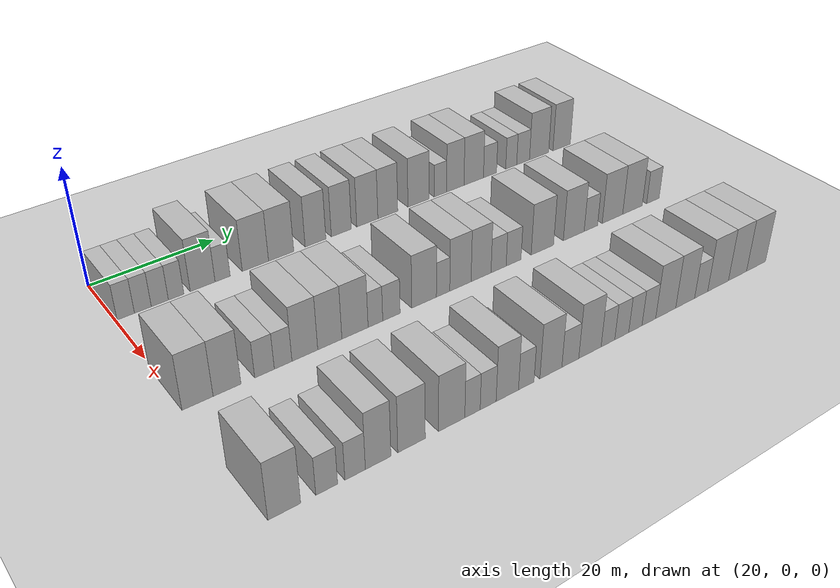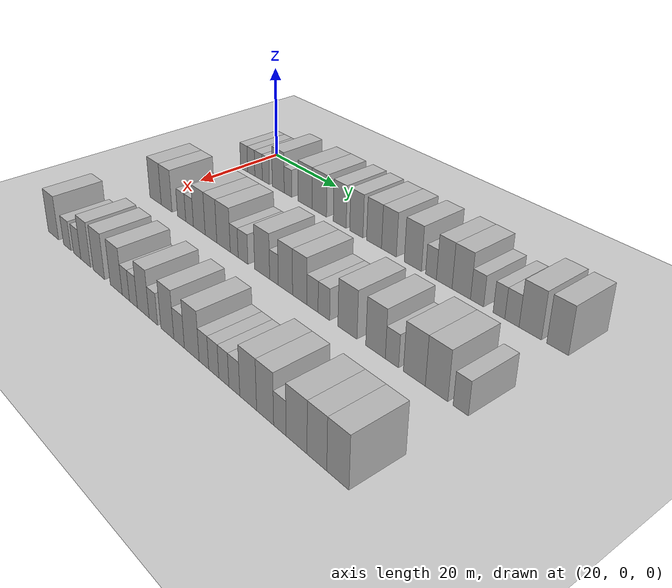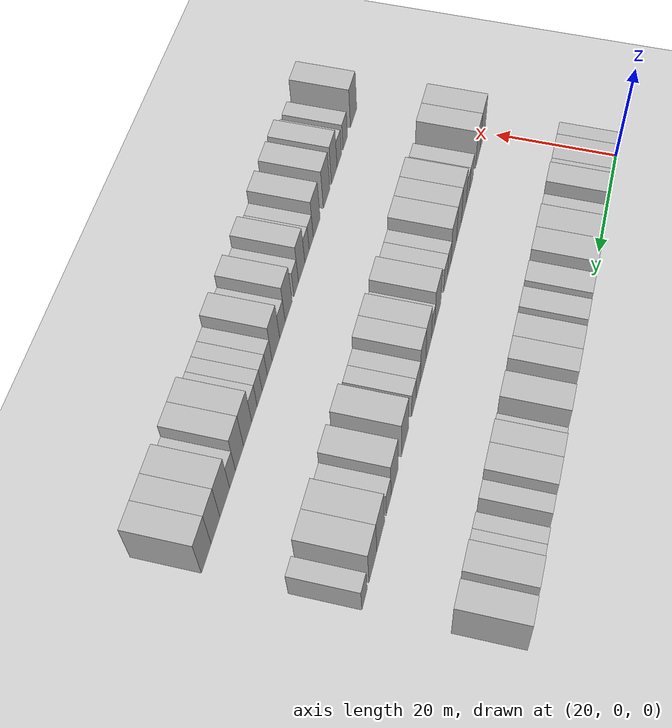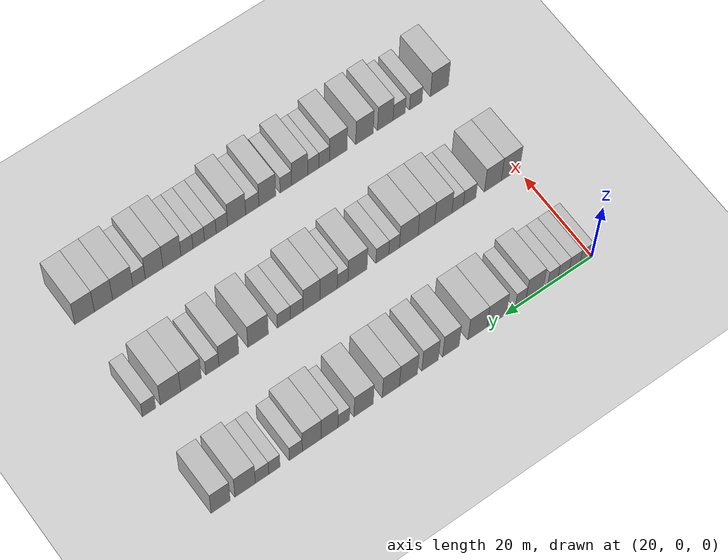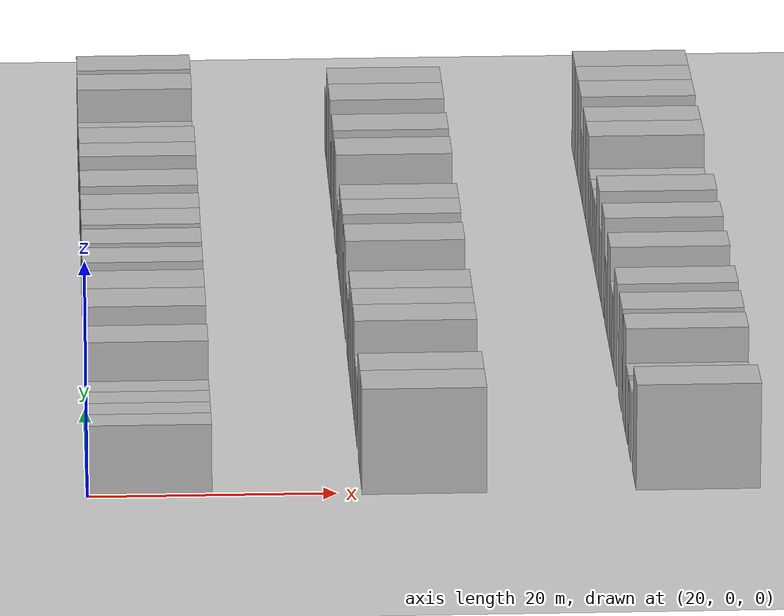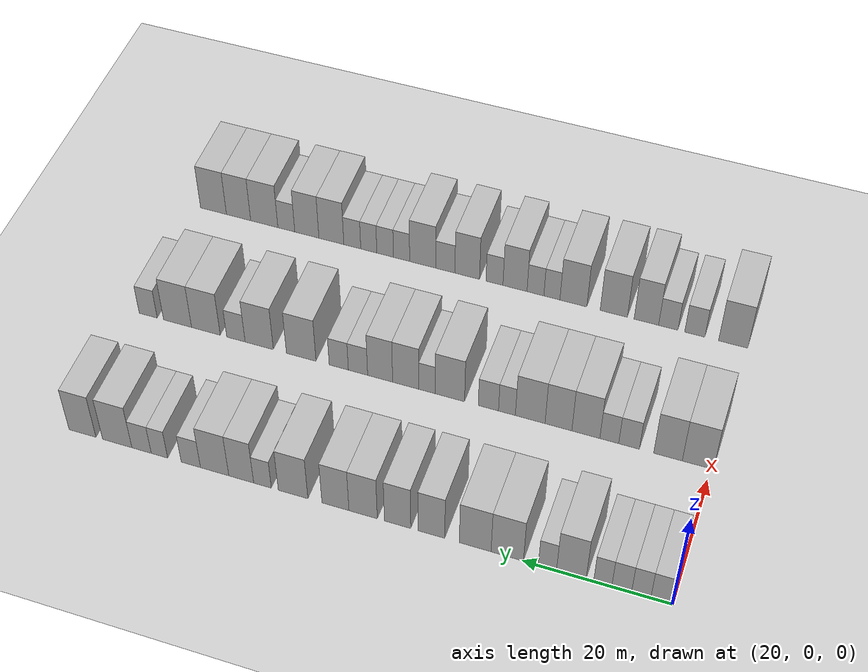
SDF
<sdf version="1.6">
 <world name="default">
  <include>
   <name>ground_plane_2</name>
   <uri>model://HANNAS_ground_plane</uri>
   <pose>100 0 0  0 0 0</pose>
  </include>
  <model name="building_66">
   <static>1</static>
   <pose>25.0000 1.5325 0 0.000000 0.000000 0.000000</pose>
   <link name="link">
    <pose>0 0 3.00 0 0 0</pose>
    <collision name="collision"><geometry><box><size>10.0000 2.5744 6.0000</size></box></geometry></collision>
    <visual name="visual">
     <cast_shadows>0</cast_shadows>
     <geometry><box><size>10.0000 2.5744 6.0000</size></box></geometry>
     <material>
      <script>
       <uri>model://HANNAS_wall/materials/scripts</uri>
       <uri>model://HANNAS_wall/materials/textures</uri>
       <name>vrc/HANNAS_wall</name>
      </script>
     </material>
    </visual>
   </link>
  </model>
  <model name="building_67">
   <static>1</static>
   <pose>25.0000 4.0901 0 0.000000 0.000000 0.000000</pose>
   <link name="link">
    <pose>0 0 3.00 0 0 0</pose>
    <collision name="collision"><geometry><box><size>10.0000 2.5406 6.0000</size></box></geometry></collision>
    <visual name="visual">
     <cast_shadows>0</cast_shadows>
     <geometry><box><size>10.0000 2.5406 6.0000</size></box></geometry>
     <material>
      <script>
       <uri>model://HANNAS_wall/materials/scripts</uri>
       <uri>model://HANNAS_wall/materials/textures</uri>
       <name>vrc/HANNAS_wall</name>
      </script>
     </material>
    </visual>
   </link>
  </model>
  <model name="building_68">
   <static>1</static>
   <pose>25.0000 6.6652 0 0.000000 0.000000 0.000000</pose>
   <link name="link">
    <pose>0 0 3.00 0 0 0</pose>
    <collision name="collision"><geometry><box><size>10.0000 2.6096 6.0000</size></box></geometry></collision>
    <visual name="visual">
     <cast_shadows>0</cast_shadows>
     <geometry><box><size>10.0000 2.6096 6.0000</size></box></geometry>
     <material>
      <script>
       <uri>model://HANNAS_wall/materials/scripts</uri>
       <uri>model://HANNAS_wall/materials/textures</uri>
       <name>vrc/HANNAS_wall</name>
      </script>
     </material>
    </visual>
   </link>
  </model>
  <model name="building_69">
   <static>1</static>
   <pose>25.0000 9.1733 0 0.000000 0.000000 0.000000</pose>
   <link name="link">
    <pose>0 0 3.00 0 0 0</pose>
    <collision name="collision"><geometry><box><size>10.0000 2.4066 6.0000</size></box></geometry></collision>
    <visual name="visual">
     <cast_shadows>0</cast_shadows>
     <geometry><box><size>10.0000 2.4066 6.0000</size></box></geometry>
     <material>
      <script>
       <uri>model://HANNAS_wall/materials/scripts</uri>
       <uri>model://HANNAS_wall/materials/textures</uri>
       <name>vrc/HANNAS_wall</name>
      </script>
     </material>
    </visual>
   </link>
  </model>
  <model name="building_70">
   <static>1</static>
   <pose>25.0000 13.3558 0 0.000000 0.000000 0.000000</pose>
   <link name="link">
    <pose>0 0 4.50 0 0 0</pose>
    <collision name="collision"><geometry><box><size>10.0000 3.9584 9.0000</size></box></geometry></collision>
    <visual name="visual">
     <cast_shadows>0</cast_shadows>
     <geometry><box><size>10.0000 3.9584 9.0000</size></box></geometry>
     <material>
      <script>
       <uri>model://HANNAS_wall/materials/scripts</uri>
       <uri>model://HANNAS_wall/materials/textures</uri>
       <name>vrc/HANNAS_wall</name>
      </script>
     </material>
    </visual>
   </link>
  </model>
  <model name="building_71">
   <static>1</static>
   <pose>25.0000 16.5608 0 0.000000 0.000000 0.000000</pose>
   <link name="link">
    <pose>0 0 3.00 0 0 0</pose>
    <collision name="collision"><geometry><box><size>10.0000 2.4517 6.0000</size></box></geometry></collision>
    <visual name="visual">
     <cast_shadows>0</cast_shadows>
     <geometry><box><size>10.0000 2.4517 6.0000</size></box></geometry>
     <material>
      <script>
       <uri>model://HANNAS_wall/materials/scripts</uri>
       <uri>model://HANNAS_wall/materials/textures</uri>
       <name>vrc/HANNAS_wall</name>
      </script>
     </material>
    </visual>
   </link>
  </model>
  <model name="building_72">
   <static>1</static>
   <pose>25.0000 21.9901 0 0.000000 0.000000 0.000000</pose>
   <link name="link">
    <pose>0 0 4.50 0 0 0</pose>
    <collision name="collision"><geometry><box><size>10.0000 4.4069 9.0000</size></box></geometry></collision>
    <visual name="visual">
     <cast_shadows>0</cast_shadows>
     <geometry><box><size>10.0000 4.4069 9.0000</size></box></geometry>
     <material>
      <script>
       <uri>model://HANNAS_wall/materials/scripts</uri>
       <uri>model://HANNAS_wall/materials/textures</uri>
       <name>vrc/HANNAS_wall</name>
      </script>
     </material>
    </visual>
   </link>
  </model>
  <model name="building_73">
   <static>1</static>
   <pose>25.0000 26.3661 0 0.000000 0.000000 0.000000</pose>
   <link name="link">
    <pose>0 0 4.50 0 0 0</pose>
    <collision name="collision"><geometry><box><size>10.0000 4.3450 9.0000</size></box></geometry></collision>
    <visual name="visual">
     <cast_shadows>0</cast_shadows>
     <geometry><box><size>10.0000 4.3450 9.0000</size></box></geometry>
     <material>
      <script>
       <uri>model://HANNAS_wall/materials/scripts</uri>
       <uri>model://HANNAS_wall/materials/textures</uri>
       <name>vrc/HANNAS_wall</name>
      </script>
     </material>
    </visual>
   </link>
  </model>
  <model name="building_74">
   <static>1</static>
   <pose>25.0000 32.3899 0 0.000000 0.000000 0.000000</pose>
   <link name="link">
    <pose>0 0 4.50 0 0 0</pose>
    <collision name="collision"><geometry><box><size>10.0000 3.7026 9.0000</size></box></geometry></collision>
    <visual name="visual">
     <cast_shadows>0</cast_shadows>
     <geometry><box><size>10.0000 3.7026 9.0000</size></box></geometry>
     <material>
      <script>
       <uri>model://HANNAS_wall/materials/scripts</uri>
       <uri>model://HANNAS_wall/materials/textures</uri>
       <name>vrc/HANNAS_wall</name>
      </script>
     </material>
    </visual>
   </link>
  </model>
  <model name="building_75">
   <static>1</static>
   <pose>25.0000 37.0780 0 0.000000 0.000000 0.000000</pose>
   <link name="link">
    <pose>0 0 4.50 0 0 0</pose>
    <collision name="collision"><geometry><box><size>10.0000 3.6735 9.0000</size></box></geometry></collision>
    <visual name="visual">
     <cast_shadows>0</cast_shadows>
     <geometry><box><size>10.0000 3.6735 9.0000</size></box></geometry>
     <material>
      <script>
       <uri>model://HANNAS_wall/materials/scripts</uri>
       <uri>model://HANNAS_wall/materials/textures</uri>
       <name>vrc/HANNAS_wall</name>
      </script>
     </material>
    </visual>
   </link>
  </model>
  <model name="building_76">
   <static>1</static>
   <pose>25.0000 41.9098 0 0.000000 0.000000 0.000000</pose>
   <link name="link">
    <pose>0 0 4.50 0 0 0</pose>
    <collision name="collision"><geometry><box><size>10.0000 3.9901 9.0000</size></box></geometry></collision>
    <visual name="visual">
     <cast_shadows>0</cast_shadows>
     <geometry><box><size>10.0000 3.9901 9.0000</size></box></geometry>
     <material>
      <script>
       <uri>model://HANNAS_wall/materials/scripts</uri>
       <uri>model://HANNAS_wall/materials/textures</uri>
       <name>vrc/HANNAS_wall</name>
      </script>
     </material>
    </visual>
   </link>
  </model>
  <model name="building_77">
   <static>1</static>
   <pose>25.0000 45.8186 0 0.000000 0.000000 0.000000</pose>
   <link name="link">
    <pose>0 0 4.50 0 0 0</pose>
    <collision name="collision"><geometry><box><size>10.0000 3.8276 9.0000</size></box></geometry></collision>
    <visual name="visual">
     <cast_shadows>0</cast_shadows>
     <geometry><box><size>10.0000 3.8276 9.0000</size></box></geometry>
     <material>
      <script>
       <uri>model://HANNAS_wall/materials/scripts</uri>
       <uri>model://HANNAS_wall/materials/textures</uri>
       <name>vrc/HANNAS_wall</name>
      </script>
     </material>
    </visual>
   </link>
  </model>
  <model name="building_78">
   <static>1</static>
   <pose>25.0000 51.8519 0 0.000000 0.000000 0.000000</pose>
   <link name="link">
    <pose>0 0 4.50 0 0 0</pose>
    <collision name="collision"><geometry><box><size>10.0000 4.2389 9.0000</size></box></geometry></collision>
    <visual name="visual">
     <cast_shadows>0</cast_shadows>
     <geometry><box><size>10.0000 4.2389 9.0000</size></box></geometry>
     <material>
      <script>
       <uri>model://HANNAS_wall/materials/scripts</uri>
       <uri>model://HANNAS_wall/materials/textures</uri>
       <name>vrc/HANNAS_wall</name>
      </script>
     </material>
    </visual>
   </link>
  </model>
  <model name="building_79">
   <static>1</static>
   <pose>25.0000 56.2461 0 0.000000 0.000000 0.000000</pose>
   <link name="link">
    <pose>0 0 3.00 0 0 0</pose>
    <collision name="collision"><geometry><box><size>10.0000 2.5495 6.0000</size></box></geometry></collision>
    <visual name="visual">
     <cast_shadows>0</cast_shadows>
     <geometry><box><size>10.0000 2.5495 6.0000</size></box></geometry>
     <material>
      <script>
       <uri>model://HANNAS_wall/materials/scripts</uri>
       <uri>model://HANNAS_wall/materials/textures</uri>
       <name>vrc/HANNAS_wall</name>
      </script>
     </material>
    </visual>
   </link>
  </model>
  <model name="building_80">
   <static>1</static>
   <pose>25.0000 59.3258 0 0.000000 0.000000 0.000000</pose>
   <link name="link">
    <pose>0 0 4.50 0 0 0</pose>
    <collision name="collision"><geometry><box><size>10.0000 3.6100 9.0000</size></box></geometry></collision>
    <visual name="visual">
     <cast_shadows>0</cast_shadows>
     <geometry><box><size>10.0000 3.6100 9.0000</size></box></geometry>
     <material>
      <script>
       <uri>model://HANNAS_wall/materials/scripts</uri>
       <uri>model://HANNAS_wall/materials/textures</uri>
       <name>vrc/HANNAS_wall</name>
      </script>
     </material>
    </visual>
   </link>
  </model>
  <model name="building_81">
   <static>1</static>
   <pose>25.0000 63.1995 0 0.000000 0.000000 0.000000</pose>
   <link name="link">
    <pose>0 0 4.50 0 0 0</pose>
    <collision name="collision"><geometry><box><size>10.0000 4.1375 9.0000</size></box></geometry></collision>
    <visual name="visual">
     <cast_shadows>0</cast_shadows>
     <geometry><box><size>10.0000 4.1375 9.0000</size></box></geometry>
     <material>
      <script>
       <uri>model://HANNAS_wall/materials/scripts</uri>
       <uri>model://HANNAS_wall/materials/textures</uri>
       <name>vrc/HANNAS_wall</name>
      </script>
     </material>
    </visual>
   </link>
  </model>
  <model name="building_82">
   <static>1</static>
   <pose>25.0000 66.6847 0 0.000000 0.000000 0.000000</pose>
   <link name="link">
    <pose>0 0 3.00 0 0 0</pose>
    <collision name="collision"><geometry><box><size>10.0000 2.8330 6.0000</size></box></geometry></collision>
    <visual name="visual">
     <cast_shadows>0</cast_shadows>
     <geometry><box><size>10.0000 2.8330 6.0000</size></box></geometry>
     <material>
      <script>
       <uri>model://HANNAS_wall/materials/scripts</uri>
       <uri>model://HANNAS_wall/materials/textures</uri>
       <name>vrc/HANNAS_wall</name>
      </script>
     </material>
    </visual>
   </link>
  </model>
  <model name="building_83">
   <static>1</static>
   <pose>25.0000 71.3152 0 0.000000 0.000000 0.000000</pose>
   <link name="link">
    <pose>0 0 3.00 0 0 0</pose>
    <collision name="collision"><geometry><box><size>10.0000 2.4280 6.0000</size></box></geometry></collision>
    <visual name="visual">
     <cast_shadows>0</cast_shadows>
     <geometry><box><size>10.0000 2.4280 6.0000</size></box></geometry>
     <material>
      <script>
       <uri>model://HANNAS_wall/materials/scripts</uri>
       <uri>model://HANNAS_wall/materials/textures</uri>
       <name>vrc/HANNAS_wall</name>
      </script>
     </material>
    </visual>
   </link>
  </model>
  <model name="building_84">
   <static>1</static>
   <pose>25.0000 73.9709 0 0.000000 0.000000 0.000000</pose>
   <link name="link">
    <pose>0 0 3.00 0 0 0</pose>
    <collision name="collision"><geometry><box><size>10.0000 2.8833 6.0000</size></box></geometry></collision>
    <visual name="visual">
     <cast_shadows>0</cast_shadows>
     <geometry><box><size>10.0000 2.8833 6.0000</size></box></geometry>
     <material>
      <script>
       <uri>model://HANNAS_wall/materials/scripts</uri>
       <uri>model://HANNAS_wall/materials/textures</uri>
       <name>vrc/HANNAS_wall</name>
      </script>
     </material>
    </visual>
   </link>
  </model>
  <model name="building_85">
   <static>1</static>
   <pose>25.0000 77.6028 0 0.000000 0.000000 0.000000</pose>
   <link name="link">
    <pose>0 0 4.50 0 0 0</pose>
    <collision name="collision"><geometry><box><size>10.0000 4.3804 9.0000</size></box></geometry></collision>
    <visual name="visual">
     <cast_shadows>0</cast_shadows>
     <geometry><box><size>10.0000 4.3804 9.0000</size></box></geometry>
     <material>
      <script>
       <uri>model://HANNAS_wall/materials/scripts</uri>
       <uri>model://HANNAS_wall/materials/textures</uri>
       <name>vrc/HANNAS_wall</name>
      </script>
     </material>
    </visual>
   </link>
  </model>
  <model name="building_86">
   <static>1</static>
   <pose>25.0000 82.8244 0 0.000000 0.000000 0.000000</pose>
   <link name="link">
    <pose>0 0 4.50 0 0 0</pose>
    <collision name="collision"><geometry><box><size>10.0000 4.0628 9.0000</size></box></geometry></collision>
    <visual name="visual">
     <cast_shadows>0</cast_shadows>
     <geometry><box><size>10.0000 4.0628 9.0000</size></box></geometry>
     <material>
      <script>
       <uri>model://HANNAS_wall/materials/scripts</uri>
       <uri>model://HANNAS_wall/materials/textures</uri>
       <name>vrc/HANNAS_wall</name>
      </script>
     </material>
    </visual>
   </link>
  </model>
  <model name="building_192">
   <static>1</static>
   <pose>47.0000 1.8218 0 0.000000 0.000000 0.000000</pose>
   <link name="link">
    <pose>0 0 4.50 0 0 0</pose>
    <collision name="collision"><geometry><box><size>10.0000 4.3255 9.0000</size></box></geometry></collision>
    <visual name="visual">
     <cast_shadows>0</cast_shadows>
     <geometry><box><size>10.0000 4.3255 9.0000</size></box></geometry>
     <material>
      <script>
       <uri>model://HANNAS_wall/materials/scripts</uri>
       <uri>model://HANNAS_wall/materials/textures</uri>
       <name>vrc/HANNAS_wall</name>
      </script>
     </material>
    </visual>
   </link>
  </model>
  <model name="building_193">
   <static>1</static>
   <pose>47.0000 5.9698 0 0.000000 0.000000 0.000000</pose>
   <link name="link">
    <pose>0 0 4.50 0 0 0</pose>
    <collision name="collision"><geometry><box><size>10.0000 3.9706 9.0000</size></box></geometry></collision>
    <visual name="visual">
     <cast_shadows>0</cast_shadows>
     <geometry><box><size>10.0000 3.9706 9.0000</size></box></geometry>
     <material>
      <script>
       <uri>model://HANNAS_wall/materials/scripts</uri>
       <uri>model://HANNAS_wall/materials/textures</uri>
       <name>vrc/HANNAS_wall</name>
      </script>
     </material>
    </visual>
   </link>
  </model>
  <model name="building_194">
   <static>1</static>
   <pose>47.0000 11.4046 0 0.000000 0.000000 0.000000</pose>
   <link name="link">
    <pose>0 0 3.00 0 0 0</pose>
    <collision name="collision"><geometry><box><size>10.0000 2.8989 6.0000</size></box></geometry></collision>
    <visual name="visual">
     <cast_shadows>0</cast_shadows>
     <geometry><box><size>10.0000 2.8989 6.0000</size></box></geometry>
     <material>
      <script>
       <uri>model://HANNAS_wall/materials/scripts</uri>
       <uri>model://HANNAS_wall/materials/textures</uri>
       <name>vrc/HANNAS_wall</name>
      </script>
     </material>
    </visual>
   </link>
  </model>
  <model name="building_195">
   <static>1</static>
   <pose>47.0000 14.1861 0 0.000000 0.000000 0.000000</pose>
   <link name="link">
    <pose>0 0 3.00 0 0 0</pose>
    <collision name="collision"><geometry><box><size>10.0000 2.6642 6.0000</size></box></geometry></collision>
    <visual name="visual">
     <cast_shadows>0</cast_shadows>
     <geometry><box><size>10.0000 2.6642 6.0000</size></box></geometry>
     <material>
      <script>
       <uri>model://HANNAS_wall/materials/scripts</uri>
       <uri>model://HANNAS_wall/materials/textures</uri>
       <name>vrc/HANNAS_wall</name>
      </script>
     </material>
    </visual>
   </link>
  </model>
  <model name="building_196">
   <static>1</static>
   <pose>47.0000 17.5049 0 0.000000 0.000000 0.000000</pose>
   <link name="link">
    <pose>0 0 4.50 0 0 0</pose>
    <collision name="collision"><geometry><box><size>10.0000 3.9733 9.0000</size></box></geometry></collision>
    <visual name="visual">
     <cast_shadows>0</cast_shadows>
     <geometry><box><size>10.0000 3.9733 9.0000</size></box></geometry>
     <material>
      <script>
       <uri>model://HANNAS_wall/materials/scripts</uri>
       <uri>model://HANNAS_wall/materials/textures</uri>
       <name>vrc/HANNAS_wall</name>
      </script>
     </material>
    </visual>
   </link>
  </model>
  <model name="building_197">
   <static>1</static>
   <pose>47.0000 21.4055 0 0.000000 0.000000 0.000000</pose>
   <link name="link">
    <pose>0 0 4.50 0 0 0</pose>
    <collision name="collision"><geometry><box><size>10.0000 3.8278 9.0000</size></box></geometry></collision>
    <visual name="visual">
     <cast_shadows>0</cast_shadows>
     <geometry><box><size>10.0000 3.8278 9.0000</size></box></geometry>
     <material>
      <script>
       <uri>model://HANNAS_wall/materials/scripts</uri>
       <uri>model://HANNAS_wall/materials/textures</uri>
       <name>vrc/HANNAS_wall</name>
      </script>
     </material>
    </visual>
   </link>
  </model>
  <model name="building_198">
   <static>1</static>
   <pose>47.0000 25.4507 0 0.000000 0.000000 0.000000</pose>
   <link name="link">
    <pose>0 0 4.50 0 0 0</pose>
    <collision name="collision"><geometry><box><size>10.0000 4.2627 9.0000</size></box></geometry></collision>
    <visual name="visual">
     <cast_shadows>0</cast_shadows>
     <geometry><box><size>10.0000 4.2627 9.0000</size></box></geometry>
     <material>
      <script>
       <uri>model://HANNAS_wall/materials/scripts</uri>
       <uri>model://HANNAS_wall/materials/textures</uri>
       <name>vrc/HANNAS_wall</name>
      </script>
     </material>
    </visual>
   </link>
  </model>
  <model name="building_199">
   <static>1</static>
   <pose>47.0000 28.7998 0 0.000000 0.000000 0.000000</pose>
   <link name="link">
    <pose>0 0 3.00 0 0 0</pose>
    <collision name="collision"><geometry><box><size>10.0000 2.4356 6.0000</size></box></geometry></collision>
    <visual name="visual">
     <cast_shadows>0</cast_shadows>
     <geometry><box><size>10.0000 2.4356 6.0000</size></box></geometry>
     <material>
      <script>
       <uri>model://HANNAS_wall/materials/scripts</uri>
       <uri>model://HANNAS_wall/materials/textures</uri>
       <name>vrc/HANNAS_wall</name>
      </script>
     </material>
    </visual>
   </link>
  </model>
  <model name="building_200">
   <static>1</static>
   <pose>47.0000 31.4882 0 0.000000 0.000000 0.000000</pose>
   <link name="link">
    <pose>0 0 3.00 0 0 0</pose>
    <collision name="collision"><geometry><box><size>10.0000 2.9411 6.0000</size></box></geometry></collision>
    <visual name="visual">
     <cast_shadows>0</cast_shadows>
     <geometry><box><size>10.0000 2.9411 6.0000</size></box></geometry>
     <material>
      <script>
       <uri>model://HANNAS_wall/materials/scripts</uri>
       <uri>model://HANNAS_wall/materials/textures</uri>
       <name>vrc/HANNAS_wall</name>
      </script>
     </material>
    </visual>
   </link>
  </model>
  <model name="building_201">
   <static>1</static>
   <pose>47.0000 37.1146 0 0.000000 0.000000 0.000000</pose>
   <link name="link">
    <pose>0 0 4.50 0 0 0</pose>
    <collision name="collision"><geometry><box><size>10.0000 4.3116 9.0000</size></box></geometry></collision>
    <visual name="visual">
     <cast_shadows>0</cast_shadows>
     <geometry><box><size>10.0000 4.3116 9.0000</size></box></geometry>
     <material>
      <script>
       <uri>model://HANNAS_wall/materials/scripts</uri>
       <uri>model://HANNAS_wall/materials/textures</uri>
       <name>vrc/HANNAS_wall</name>
      </script>
     </material>
    </visual>
   </link>
  </model>
  <model name="building_202">
   <static>1</static>
   <pose>47.0000 40.4704 0 0.000000 0.000000 0.000000</pose>
   <link name="link">
    <pose>0 0 3.00 0 0 0</pose>
    <collision name="collision"><geometry><box><size>10.0000 2.4001 6.0000</size></box></geometry></collision>
    <visual name="visual">
     <cast_shadows>0</cast_shadows>
     <geometry><box><size>10.0000 2.4001 6.0000</size></box></geometry>
     <material>
      <script>
       <uri>model://HANNAS_wall/materials/scripts</uri>
       <uri>model://HANNAS_wall/materials/textures</uri>
       <name>vrc/HANNAS_wall</name>
      </script>
     </material>
    </visual>
   </link>
  </model>
  <model name="building_203">
   <static>1</static>
   <pose>47.0000 43.6138 0 0.000000 0.000000 0.000000</pose>
   <link name="link">
    <pose>0 0 4.50 0 0 0</pose>
    <collision name="collision"><geometry><box><size>10.0000 3.8867 9.0000</size></box></geometry></collision>
    <visual name="visual">
     <cast_shadows>0</cast_shadows>
     <geometry><box><size>10.0000 3.8867 9.0000</size></box></geometry>
     <material>
      <script>
       <uri>model://HANNAS_wall/materials/scripts</uri>
       <uri>model://HANNAS_wall/materials/textures</uri>
       <name>vrc/HANNAS_wall</name>
      </script>
     </material>
    </visual>
   </link>
  </model>
  <model name="building_204">
   <static>1</static>
   <pose>47.0000 47.4220 0 0.000000 0.000000 0.000000</pose>
   <link name="link">
    <pose>0 0 4.50 0 0 0</pose>
    <collision name="collision"><geometry><box><size>10.0000 3.7297 9.0000</size></box></geometry></collision>
    <visual name="visual">
     <cast_shadows>0</cast_shadows>
     <geometry><box><size>10.0000 3.7297 9.0000</size></box></geometry>
     <material>
      <script>
       <uri>model://HANNAS_wall/materials/scripts</uri>
       <uri>model://HANNAS_wall/materials/textures</uri>
       <name>vrc/HANNAS_wall</name>
      </script>
     </material>
    </visual>
   </link>
  </model>
  <model name="building_205">
   <static>1</static>
   <pose>47.0000 50.7303 0 0.000000 0.000000 0.000000</pose>
   <link name="link">
    <pose>0 0 3.00 0 0 0</pose>
    <collision name="collision"><geometry><box><size>10.0000 2.8868 6.0000</size></box></geometry></collision>
    <visual name="visual">
     <cast_shadows>0</cast_shadows>
     <geometry><box><size>10.0000 2.8868 6.0000</size></box></geometry>
     <material>
      <script>
       <uri>model://HANNAS_wall/materials/scripts</uri>
       <uri>model://HANNAS_wall/materials/textures</uri>
       <name>vrc/HANNAS_wall</name>
      </script>
     </material>
    </visual>
   </link>
  </model>
  <model name="building_206">
   <static>1</static>
   <pose>47.0000 53.6144 0 0.000000 0.000000 0.000000</pose>
   <link name="link">
    <pose>0 0 3.00 0 0 0</pose>
    <collision name="collision"><geometry><box><size>10.0000 2.8814 6.0000</size></box></geometry></collision>
    <visual name="visual">
     <cast_shadows>0</cast_shadows>
     <geometry><box><size>10.0000 2.8814 6.0000</size></box></geometry>
     <material>
      <script>
       <uri>model://HANNAS_wall/materials/scripts</uri>
       <uri>model://HANNAS_wall/materials/textures</uri>
       <name>vrc/HANNAS_wall</name>
      </script>
     </material>
    </visual>
   </link>
  </model>
  <model name="building_207">
   <static>1</static>
   <pose>47.0000 59.3035 0 0.000000 0.000000 0.000000</pose>
   <link name="link">
    <pose>0 0 4.50 0 0 0</pose>
    <collision name="collision"><geometry><box><size>10.0000 4.4968 9.0000</size></box></geometry></collision>
    <visual name="visual">
     <cast_shadows>0</cast_shadows>
     <geometry><box><size>10.0000 4.4968 9.0000</size></box></geometry>
     <material>
      <script>
       <uri>model://HANNAS_wall/materials/scripts</uri>
       <uri>model://HANNAS_wall/materials/textures</uri>
       <name>vrc/HANNAS_wall</name>
      </script>
     </material>
    </visual>
   </link>
  </model>
  <model name="building_208">
   <static>1</static>
   <pose>47.0000 65.7232 0 0.000000 0.000000 0.000000</pose>
   <link name="link">
    <pose>0 0 4.50 0 0 0</pose>
    <collision name="collision"><geometry><box><size>10.0000 4.3427 9.0000</size></box></geometry></collision>
    <visual name="visual">
     <cast_shadows>0</cast_shadows>
     <geometry><box><size>10.0000 4.3427 9.0000</size></box></geometry>
     <material>
      <script>
       <uri>model://HANNAS_wall/materials/scripts</uri>
       <uri>model://HANNAS_wall/materials/textures</uri>
       <name>vrc/HANNAS_wall</name>
      </script>
     </material>
    </visual>
   </link>
  </model>
  <model name="building_209">
   <static>1</static>
   <pose>47.0000 69.3170 0 0.000000 0.000000 0.000000</pose>
   <link name="link">
    <pose>0 0 3.00 0 0 0</pose>
    <collision name="collision"><geometry><box><size>10.0000 2.8449 6.0000</size></box></geometry></collision>
    <visual name="visual">
     <cast_shadows>0</cast_shadows>
     <geometry><box><size>10.0000 2.8449 6.0000</size></box></geometry>
     <material>
      <script>
       <uri>model://HANNAS_wall/materials/scripts</uri>
       <uri>model://HANNAS_wall/materials/textures</uri>
       <name>vrc/HANNAS_wall</name>
      </script>
     </material>
    </visual>
   </link>
  </model>
  <model name="building_210">
   <static>1</static>
   <pose>47.0000 73.9747 0 0.000000 0.000000 0.000000</pose>
   <link name="link">
    <pose>0 0 4.50 0 0 0</pose>
    <collision name="collision"><geometry><box><size>10.0000 4.4705 9.0000</size></box></geometry></collision>
    <visual name="visual">
     <cast_shadows>0</cast_shadows>
     <geometry><box><size>10.0000 4.4705 9.0000</size></box></geometry>
     <material>
      <script>
       <uri>model://HANNAS_wall/materials/scripts</uri>
       <uri>model://HANNAS_wall/materials/textures</uri>
       <name>vrc/HANNAS_wall</name>
      </script>
     </material>
    </visual>
   </link>
  </model>
  <model name="building_211">
   <static>1</static>
   <pose>47.0000 78.4088 0 0.000000 0.000000 0.000000</pose>
   <link name="link">
    <pose>0 0 4.50 0 0 0</pose>
    <collision name="collision"><geometry><box><size>10.0000 4.3977 9.0000</size></box></geometry></collision>
    <visual name="visual">
     <cast_shadows>0</cast_shadows>
     <geometry><box><size>10.0000 4.3977 9.0000</size></box></geometry>
     <material>
      <script>
       <uri>model://HANNAS_wall/materials/scripts</uri>
       <uri>model://HANNAS_wall/materials/textures</uri>
       <name>vrc/HANNAS_wall</name>
      </script>
     </material>
    </visual>
   </link>
  </model>
  <model name="building_212">
   <static>1</static>
   <pose>47.0000 83.0308 0 0.000000 0.000000 0.000000</pose>
   <link name="link">
    <pose>0 0 3.00 0 0 0</pose>
    <collision name="collision"><geometry><box><size>10.0000 2.8465 6.0000</size></box></geometry></collision>
    <visual name="visual">
     <cast_shadows>0</cast_shadows>
     <geometry><box><size>10.0000 2.8465 6.0000</size></box></geometry>
     <material>
      <script>
       <uri>model://HANNAS_wall/materials/scripts</uri>
       <uri>model://HANNAS_wall/materials/textures</uri>
       <name>vrc/HANNAS_wall</name>
      </script>
     </material>
    </visual>
   </link>
  </model>
  <model name="building_322">
   <static>1</static>
   <pose>69.0000 1.8210 0 0.000000 0.000000 0.000000</pose>
   <link name="link">
    <pose>0 0 4.50 0 0 0</pose>
    <collision name="collision"><geometry><box><size>10.0000 4.2487 9.0000</size></box></geometry></collision>
    <visual name="visual">
     <cast_shadows>0</cast_shadows>
     <geometry><box><size>10.0000 4.2487 9.0000</size></box></geometry>
     <material>
      <script>
       <uri>model://HANNAS_wall/materials/scripts</uri>
       <uri>model://HANNAS_wall/materials/textures</uri>
       <name>vrc/HANNAS_wall</name>
      </script>
     </material>
    </visual>
   </link>
  </model>
  <model name="building_323">
   <static>1</static>
   <pose>69.0000 7.4201 0 0.000000 0.000000 0.000000</pose>
   <link name="link">
    <pose>0 0 3.00 0 0 0</pose>
    <collision name="collision"><geometry><box><size>10.0000 2.9496 6.0000</size></box></geometry></collision>
    <visual name="visual">
     <cast_shadows>0</cast_shadows>
     <geometry><box><size>10.0000 2.9496 6.0000</size></box></geometry>
     <material>
      <script>
       <uri>model://HANNAS_wall/materials/scripts</uri>
       <uri>model://HANNAS_wall/materials/textures</uri>
       <name>vrc/HANNAS_wall</name>
      </script>
     </material>
    </visual>
   </link>
  </model>
  <model name="building_324">
   <static>1</static>
   <pose>69.0000 11.3167 0 0.000000 0.000000 0.000000</pose>
   <link name="link">
    <pose>0 0 3.00 0 0 0</pose>
    <collision name="collision"><geometry><box><size>10.0000 2.8436 6.0000</size></box></geometry></collision>
    <visual name="visual">
     <cast_shadows>0</cast_shadows>
     <geometry><box><size>10.0000 2.8436 6.0000</size></box></geometry>
     <material>
      <script>
       <uri>model://HANNAS_wall/materials/scripts</uri>
       <uri>model://HANNAS_wall/materials/textures</uri>
       <name>vrc/HANNAS_wall</name>
      </script>
     </material>
    </visual>
   </link>
  </model>
  <model name="building_325">
   <static>1</static>
   <pose>69.0000 14.5555 0 0.000000 0.000000 0.000000</pose>
   <link name="link">
    <pose>0 0 4.50 0 0 0</pose>
    <collision name="collision"><geometry><box><size>10.0000 3.6340 9.0000</size></box></geometry></collision>
    <visual name="visual">
     <cast_shadows>0</cast_shadows>
     <geometry><box><size>10.0000 3.6340 9.0000</size></box></geometry>
     <material>
      <script>
       <uri>model://HANNAS_wall/materials/scripts</uri>
       <uri>model://HANNAS_wall/materials/textures</uri>
       <name>vrc/HANNAS_wall</name>
      </script>
     </material>
    </visual>
   </link>
  </model>
  <model name="building_326">
   <static>1</static>
   <pose>69.0000 19.4053 0 0.000000 0.000000 0.000000</pose>
   <link name="link">
    <pose>0 0 4.50 0 0 0</pose>
    <collision name="collision"><geometry><box><size>10.0000 4.0656 9.0000</size></box></geometry></collision>
    <visual name="visual">
     <cast_shadows>0</cast_shadows>
     <geometry><box><size>10.0000 4.0656 9.0000</size></box></geometry>
     <material>
      <script>
       <uri>model://HANNAS_wall/materials/scripts</uri>
       <uri>model://HANNAS_wall/materials/textures</uri>
       <name>vrc/HANNAS_wall</name>
      </script>
     </material>
    </visual>
   </link>
  </model>
  <model name="building_327">
   <static>1</static>
   <pose>69.0000 25.4711 0 0.000000 0.000000 0.000000</pose>
   <link name="link">
    <pose>0 0 4.50 0 0 0</pose>
    <collision name="collision"><geometry><box><size>10.0000 4.0659 9.0000</size></box></geometry></collision>
    <visual name="visual">
     <cast_shadows>0</cast_shadows>
     <geometry><box><size>10.0000 4.0659 9.0000</size></box></geometry>
     <material>
      <script>
       <uri>model://HANNAS_wall/materials/scripts</uri>
       <uri>model://HANNAS_wall/materials/textures</uri>
       <name>vrc/HANNAS_wall</name>
      </script>
     </material>
    </visual>
   </link>
  </model>
  <model name="building_328">
   <static>1</static>
   <pose>69.0000 28.7185 0 0.000000 0.000000 0.000000</pose>
   <link name="link">
    <pose>0 0 3.00 0 0 0</pose>
    <collision name="collision"><geometry><box><size>10.0000 2.4290 6.0000</size></box></geometry></collision>
    <visual name="visual">
     <cast_shadows>0</cast_shadows>
     <geometry><box><size>10.0000 2.4290 6.0000</size></box></geometry>
     <material>
      <script>
       <uri>model://HANNAS_wall/materials/scripts</uri>
       <uri>model://HANNAS_wall/materials/textures</uri>
       <name>vrc/HANNAS_wall</name>
      </script>
     </material>
    </visual>
   </link>
  </model>
  <model name="building_329">
   <static>1</static>
   <pose>69.0000 31.2164 0 0.000000 0.000000 0.000000</pose>
   <link name="link">
    <pose>0 0 3.00 0 0 0</pose>
    <collision name="collision"><geometry><box><size>10.0000 2.5667 6.0000</size></box></geometry></collision>
    <visual name="visual">
     <cast_shadows>0</cast_shadows>
     <geometry><box><size>10.0000 2.5667 6.0000</size></box></geometry>
     <material>
      <script>
       <uri>model://HANNAS_wall/materials/scripts</uri>
       <uri>model://HANNAS_wall/materials/textures</uri>
       <name>vrc/HANNAS_wall</name>
      </script>
     </material>
    </visual>
   </link>
  </model>
  <model name="building_330">
   <static>1</static>
   <pose>69.0000 34.3434 0 0.000000 0.000000 0.000000</pose>
   <link name="link">
    <pose>0 0 4.50 0 0 0</pose>
    <collision name="collision"><geometry><box><size>10.0000 3.6874 9.0000</size></box></geometry></collision>
    <visual name="visual">
     <cast_shadows>0</cast_shadows>
     <geometry><box><size>10.0000 3.6874 9.0000</size></box></geometry>
     <material>
      <script>
       <uri>model://HANNAS_wall/materials/scripts</uri>
       <uri>model://HANNAS_wall/materials/textures</uri>
       <name>vrc/HANNAS_wall</name>
      </script>
     </material>
    </visual>
   </link>
  </model>
  <model name="building_331">
   <static>1</static>
   <pose>69.0000 37.4927 0 0.000000 0.000000 0.000000</pose>
   <link name="link">
    <pose>0 0 3.00 0 0 0</pose>
    <collision name="collision"><geometry><box><size>10.0000 2.6111 6.0000</size></box></geometry></collision>
    <visual name="visual">
     <cast_shadows>0</cast_shadows>
     <geometry><box><size>10.0000 2.6111 6.0000</size></box></geometry>
     <material>
      <script>
       <uri>model://HANNAS_wall/materials/scripts</uri>
       <uri>model://HANNAS_wall/materials/textures</uri>
       <name>vrc/HANNAS_wall</name>
      </script>
     </material>
    </visual>
   </link>
  </model>
  <model name="building_332">
   <static>1</static>
   <pose>69.0000 41.7042 0 0.000000 0.000000 0.000000</pose>
   <link name="link">
    <pose>0 0 4.50 0 0 0</pose>
    <collision name="collision"><geometry><box><size>10.0000 3.8119 9.0000</size></box></geometry></collision>
    <visual name="visual">
     <cast_shadows>0</cast_shadows>
     <geometry><box><size>10.0000 3.8119 9.0000</size></box></geometry>
     <material>
      <script>
       <uri>model://HANNAS_wall/materials/scripts</uri>
       <uri>model://HANNAS_wall/materials/textures</uri>
       <name>vrc/HANNAS_wall</name>
      </script>
     </material>
    </visual>
   </link>
  </model>
  <model name="building_333">
   <static>1</static>
   <pose>69.0000 45.1075 0 0.000000 0.000000 0.000000</pose>
   <link name="link">
    <pose>0 0 3.00 0 0 0</pose>
    <collision name="collision"><geometry><box><size>10.0000 2.9948 6.0000</size></box></geometry></collision>
    <visual name="visual">
     <cast_shadows>0</cast_shadows>
     <geometry><box><size>10.0000 2.9948 6.0000</size></box></geometry>
     <material>
      <script>
       <uri>model://HANNAS_wall/materials/scripts</uri>
       <uri>model://HANNAS_wall/materials/textures</uri>
       <name>vrc/HANNAS_wall</name>
      </script>
     </material>
    </visual>
   </link>
  </model>
  <model name="building_334">
   <static>1</static>
   <pose>69.0000 48.6363 0 0.000000 0.000000 0.000000</pose>
   <link name="link">
    <pose>0 0 4.50 0 0 0</pose>
    <collision name="collision"><geometry><box><size>10.0000 4.0629 9.0000</size></box></geometry></collision>
    <visual name="visual">
     <cast_shadows>0</cast_shadows>
     <geometry><box><size>10.0000 4.0629 9.0000</size></box></geometry>
     <material>
      <script>
       <uri>model://HANNAS_wall/materials/scripts</uri>
       <uri>model://HANNAS_wall/materials/textures</uri>
       <name>vrc/HANNAS_wall</name>
      </script>
     </material>
    </visual>
   </link>
  </model>
  <model name="building_335">
   <static>1</static>
   <pose>69.0000 51.9406 0 0.000000 0.000000 0.000000</pose>
   <link name="link">
    <pose>0 0 3.00 0 0 0</pose>
    <collision name="collision"><geometry><box><size>10.0000 2.5456 6.0000</size></box></geometry></collision>
    <visual name="visual">
     <cast_shadows>0</cast_shadows>
     <geometry><box><size>10.0000 2.5456 6.0000</size></box></geometry>
     <material>
      <script>
       <uri>model://HANNAS_wall/materials/scripts</uri>
       <uri>model://HANNAS_wall/materials/textures</uri>
       <name>vrc/HANNAS_wall</name>
      </script>
     </material>
    </visual>
   </link>
  </model>
  <model name="building_336">
   <static>1</static>
   <pose>69.0000 54.5278 0 0.000000 0.000000 0.000000</pose>
   <link name="link">
    <pose>0 0 3.00 0 0 0</pose>
    <collision name="collision"><geometry><box><size>10.0000 2.6287 6.0000</size></box></geometry></collision>
    <visual name="visual">
     <cast_shadows>0</cast_shadows>
     <geometry><box><size>10.0000 2.6287 6.0000</size></box></geometry>
     <material>
      <script>
       <uri>model://HANNAS_wall/materials/scripts</uri>
       <uri>model://HANNAS_wall/materials/textures</uri>
       <name>vrc/HANNAS_wall</name>
      </script>
     </material>
    </visual>
   </link>
  </model>
  <model name="building_337">
   <static>1</static>
   <pose>69.0000 57.1155 0 0.000000 0.000000 0.000000</pose>
   <link name="link">
    <pose>0 0 3.00 0 0 0</pose>
    <collision name="collision"><geometry><box><size>10.0000 2.5467 6.0000</size></box></geometry></collision>
    <visual name="visual">
     <cast_shadows>0</cast_shadows>
     <geometry><box><size>10.0000 2.5467 6.0000</size></box></geometry>
     <material>
      <script>
       <uri>model://HANNAS_wall/materials/scripts</uri>
       <uri>model://HANNAS_wall/materials/textures</uri>
       <name>vrc/HANNAS_wall</name>
      </script>
     </material>
    </visual>
   </link>
  </model>
  <model name="building_338">
   <static>1</static>
   <pose>69.0000 59.7319 0 0.000000 0.000000 0.000000</pose>
   <link name="link">
    <pose>0 0 3.00 0 0 0</pose>
    <collision name="collision"><geometry><box><size>10.0000 2.6861 6.0000</size></box></geometry></collision>
    <visual name="visual">
     <cast_shadows>0</cast_shadows>
     <geometry><box><size>10.0000 2.6861 6.0000</size></box></geometry>
     <material>
      <script>
       <uri>model://HANNAS_wall/materials/scripts</uri>
       <uri>model://HANNAS_wall/materials/textures</uri>
       <name>vrc/HANNAS_wall</name>
      </script>
     </material>
    </visual>
   </link>
  </model>
  <model name="building_339">
   <static>1</static>
   <pose>69.0000 63.0724 0 0.000000 0.000000 0.000000</pose>
   <link name="link">
    <pose>0 0 4.50 0 0 0</pose>
    <collision name="collision"><geometry><box><size>10.0000 3.9950 9.0000</size></box></geometry></collision>
    <visual name="visual">
     <cast_shadows>0</cast_shadows>
     <geometry><box><size>10.0000 3.9950 9.0000</size></box></geometry>
     <material>
      <script>
       <uri>model://HANNAS_wall/materials/scripts</uri>
       <uri>model://HANNAS_wall/materials/textures</uri>
       <name>vrc/HANNAS_wall</name>
      </script>
     </material>
    </visual>
   </link>
  </model>
  <model name="building_340">
   <static>1</static>
   <pose>69.0000 67.0101 0 0.000000 0.000000 0.000000</pose>
   <link name="link">
    <pose>0 0 4.50 0 0 0</pose>
    <collision name="collision"><geometry><box><size>10.0000 3.8805 9.0000</size></box></geometry></collision>
    <visual name="visual">
     <cast_shadows>0</cast_shadows>
     <geometry><box><size>10.0000 3.8805 9.0000</size></box></geometry>
     <material>
      <script>
       <uri>model://HANNAS_wall/materials/scripts</uri>
       <uri>model://HANNAS_wall/materials/textures</uri>
       <name>vrc/HANNAS_wall</name>
      </script>
     </material>
    </visual>
   </link>
  </model>
  <model name="building_341">
   <static>1</static>
   <pose>69.0000 70.3177 0 0.000000 0.000000 0.000000</pose>
   <link name="link">
    <pose>0 0 3.00 0 0 0</pose>
    <collision name="collision"><geometry><box><size>10.0000 2.7347 6.0000</size></box></geometry></collision>
    <visual name="visual">
     <cast_shadows>0</cast_shadows>
     <geometry><box><size>10.0000 2.7347 6.0000</size></box></geometry>
     <material>
      <script>
       <uri>model://HANNAS_wall/materials/scripts</uri>
       <uri>model://HANNAS_wall/materials/textures</uri>
       <name>vrc/HANNAS_wall</name>
      </script>
     </material>
    </visual>
   </link>
  </model>
  <model name="building_342">
   <static>1</static>
   <pose>69.0000 73.9022 0 0.000000 0.000000 0.000000</pose>
   <link name="link">
    <pose>0 0 4.50 0 0 0</pose>
    <collision name="collision"><geometry><box><size>10.0000 4.4344 9.0000</size></box></geometry></collision>
    <visual name="visual">
     <cast_shadows>0</cast_shadows>
     <geometry><box><size>10.0000 4.4344 9.0000</size></box></geometry>
     <material>
      <script>
       <uri>model://HANNAS_wall/materials/scripts</uri>
       <uri>model://HANNAS_wall/materials/textures</uri>
       <name>vrc/HANNAS_wall</name>
      </script>
     </material>
    </visual>
   </link>
  </model>
  <model name="building_343">
   <static>1</static>
   <pose>69.0000 78.1046 0 0.000000 0.000000 0.000000</pose>
   <link name="link">
    <pose>0 0 4.50 0 0 0</pose>
    <collision name="collision"><geometry><box><size>10.0000 3.9703 9.0000</size></box></geometry></collision>
    <visual name="visual">
     <cast_shadows>0</cast_shadows>
     <geometry><box><size>10.0000 3.9703 9.0000</size></box></geometry>
     <material>
      <script>
       <uri>model://HANNAS_wall/materials/scripts</uri>
       <uri>model://HANNAS_wall/materials/textures</uri>
       <name>vrc/HANNAS_wall</name>
      </script>
     </material>
    </visual>
   </link>
  </model>
  <model name="building_344">
   <static>1</static>
   <pose>69.0000 82.2220 0 0.000000 0.000000 0.000000</pose>
   <link name="link">
    <pose>0 0 4.50 0 0 0</pose>
    <collision name="collision"><geometry><box><size>10.0000 4.2646 9.0000</size></box></geometry></collision>
    <visual name="visual">
     <cast_shadows>0</cast_shadows>
     <geometry><box><size>10.0000 4.2646 9.0000</size></box></geometry>
     <material>
      <script>
       <uri>model://HANNAS_wall/materials/scripts</uri>
       <uri>model://HANNAS_wall/materials/textures</uri>
       <name>vrc/HANNAS_wall</name>
      </script>
     </material>
    </visual>
   </link>
  </model>
 </world>
</sdf>
